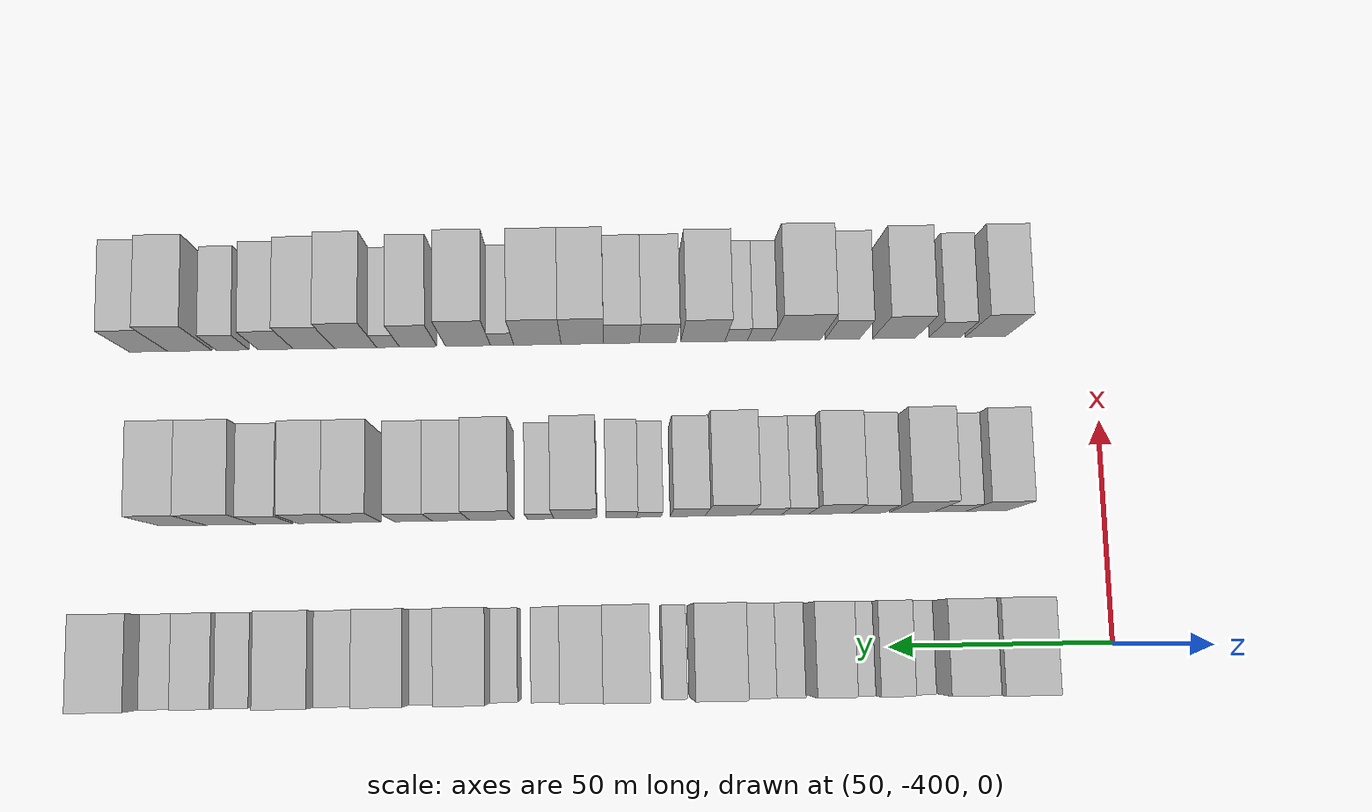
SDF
<sdf version="1.6">
 <world name="default">
  <model name="building_1">
   <static>1</static>
   <pose>50.0000 -374.2939 0 0.000000 0.000000 0.000000</pose>
   <link name="link">
    <pose>0 0 12.00 0 0 0</pose>
    <collision name="collision"><geometry><box><size>20.0000 11.4122 24.0000</size></box></geometry></collision>
    <visual name="visual">
     <cast_shadows>0</cast_shadows>
     <geometry><box><size>20.0000 11.4122 24.0000</size></box></geometry>
     <material>
      <script>
       <uri>model://HANNAS_wall/materials/scripts</uri>
       <uri>model://HANNAS_wall/materials/textures</uri>
       <name>vrc/HANNAS_wall</name>
      </script>
     </material>
    </visual>
   </link>
  </model>
  <model name="building_2">
   <static>1</static>
   <pose>50.0000 -363.4568 0 0.000000 0.000000 0.000000</pose>
   <link name="link">
    <pose>0 0 10.50 0 0 0</pose>
    <collision name="collision"><geometry><box><size>20.0000 10.2619 21.0000</size></box></geometry></collision>
    <visual name="visual">
     <cast_shadows>0</cast_shadows>
     <geometry><box><size>20.0000 10.2619 21.0000</size></box></geometry>
     <material>
      <script>
       <uri>model://HANNAS_wall/materials/scripts</uri>
       <uri>model://HANNAS_wall/materials/textures</uri>
       <name>vrc/HANNAS_wall</name>
      </script>
     </material>
    </visual>
   </link>
  </model>
  <model name="building_3">
   <static>1</static>
   <pose>50.0000 -354.5349 0 0.000000 0.000000 0.000000</pose>
   <link name="link">
    <pose>0 0 6.00 0 0 0</pose>
    <collision name="collision"><geometry><box><size>20.0000 5.5819 12.0000</size></box></geometry></collision>
    <visual name="visual">
     <cast_shadows>0</cast_shadows>
     <geometry><box><size>20.0000 5.5819 12.0000</size></box></geometry>
     <material>
      <script>
       <uri>model://HANNAS_wall/materials/scripts</uri>
       <uri>model://HANNAS_wall/materials/textures</uri>
       <name>vrc/HANNAS_wall</name>
      </script>
     </material>
    </visual>
   </link>
  </model>
  <model name="building_4">
   <static>1</static>
   <pose>50.0000 -348.0788 0 0.000000 0.000000 0.000000</pose>
   <link name="link">
    <pose>0 0 9.00 0 0 0</pose>
    <collision name="collision"><geometry><box><size>20.0000 7.3304 18.0000</size></box></geometry></collision>
    <visual name="visual">
     <cast_shadows>0</cast_shadows>
     <geometry><box><size>20.0000 7.3304 18.0000</size></box></geometry>
     <material>
      <script>
       <uri>model://HANNAS_wall/materials/scripts</uri>
       <uri>model://HANNAS_wall/materials/textures</uri>
       <name>vrc/HANNAS_wall</name>
      </script>
     </material>
    </visual>
   </link>
  </model>
  <model name="building_5">
   <static>1</static>
   <pose>50.0000 -342.0132 0 0.000000 0.000000 0.000000</pose>
   <link name="link">
    <pose>0 0 6.00 0 0 0</pose>
    <collision name="collision"><geometry><box><size>20.0000 4.8006 12.0000</size></box></geometry></collision>
    <visual name="visual">
     <cast_shadows>0</cast_shadows>
     <geometry><box><size>20.0000 4.8006 12.0000</size></box></geometry>
     <material>
      <script>
       <uri>model://HANNAS_wall/materials/scripts</uri>
       <uri>model://HANNAS_wall/materials/textures</uri>
       <name>vrc/HANNAS_wall</name>
      </script>
     </material>
    </visual>
   </link>
  </model>
  <model name="building_6">
   <static>1</static>
   <pose>50.0000 -335.3827 0 0.000000 0.000000 0.000000</pose>
   <link name="link">
    <pose>0 0 9.00 0 0 0</pose>
    <collision name="collision"><geometry><box><size>20.0000 8.4605 18.0000</size></box></geometry></collision>
    <visual name="visual">
     <cast_shadows>0</cast_shadows>
     <geometry><box><size>20.0000 8.4605 18.0000</size></box></geometry>
     <material>
      <script>
       <uri>model://HANNAS_wall/materials/scripts</uri>
       <uri>model://HANNAS_wall/materials/textures</uri>
       <name>vrc/HANNAS_wall</name>
      </script>
     </material>
    </visual>
   </link>
  </model>
  <model name="building_7">
   <static>1</static>
   <pose>50.0000 -326.1013 0 0.000000 0.000000 0.000000</pose>
   <link name="link">
    <pose>0 0 7.50 0 0 0</pose>
    <collision name="collision"><geometry><box><size>20.0000 6.1022 15.0000</size></box></geometry></collision>
    <visual name="visual">
     <cast_shadows>0</cast_shadows>
     <geometry><box><size>20.0000 6.1022 15.0000</size></box></geometry>
     <material>
      <script>
       <uri>model://HANNAS_wall/materials/scripts</uri>
       <uri>model://HANNAS_wall/materials/textures</uri>
       <name>vrc/HANNAS_wall</name>
      </script>
     </material>
    </visual>
   </link>
  </model>
  <model name="building_8">
   <static>1</static>
   <pose>50.0000 -319.6761 0 0.000000 0.000000 0.000000</pose>
   <link name="link">
    <pose>0 0 7.50 0 0 0</pose>
    <collision name="collision"><geometry><box><size>20.0000 6.7484 15.0000</size></box></geometry></collision>
    <visual name="visual">
     <cast_shadows>0</cast_shadows>
     <geometry><box><size>20.0000 6.7484 15.0000</size></box></geometry>
     <material>
      <script>
       <uri>model://HANNAS_wall/materials/scripts</uri>
       <uri>model://HANNAS_wall/materials/textures</uri>
       <name>vrc/HANNAS_wall</name>
      </script>
     </material>
    </visual>
   </link>
  </model>
  <model name="building_9">
   <static>1</static>
   <pose>50.0000 -310.8692 0 0.000000 0.000000 0.000000</pose>
   <link name="link">
    <pose>0 0 12.00 0 0 0</pose>
    <collision name="collision"><geometry><box><size>20.0000 10.8653 24.0000</size></box></geometry></collision>
    <visual name="visual">
     <cast_shadows>0</cast_shadows>
     <geometry><box><size>20.0000 10.8653 24.0000</size></box></geometry>
     <material>
      <script>
       <uri>model://HANNAS_wall/materials/scripts</uri>
       <uri>model://HANNAS_wall/materials/textures</uri>
       <name>vrc/HANNAS_wall</name>
      </script>
     </material>
    </visual>
   </link>
  </model>
  <model name="building_10">
   <static>1</static>
   <pose>50.0000 -301.8621 0 0.000000 0.000000 0.000000</pose>
   <link name="link">
    <pose>0 0 6.00 0 0 0</pose>
    <collision name="collision"><geometry><box><size>20.0000 5.1489 12.0000</size></box></geometry></collision>
    <visual name="visual">
     <cast_shadows>0</cast_shadows>
     <geometry><box><size>20.0000 5.1489 12.0000</size></box></geometry>
     <material>
      <script>
       <uri>model://HANNAS_wall/materials/scripts</uri>
       <uri>model://HANNAS_wall/materials/textures</uri>
       <name>vrc/HANNAS_wall</name>
      </script>
     </material>
    </visual>
   </link>
  </model>
  <model name="building_11">
   <static>1</static>
   <pose>50.0000 -291.4230 0 0.000000 0.000000 0.000000</pose>
   <link name="link">
    <pose>0 0 12.00 0 0 0</pose>
    <collision name="collision"><geometry><box><size>20.0000 9.7293 24.0000</size></box></geometry></collision>
    <visual name="visual">
     <cast_shadows>0</cast_shadows>
     <geometry><box><size>20.0000 9.7293 24.0000</size></box></geometry>
     <material>
      <script>
       <uri>model://HANNAS_wall/materials/scripts</uri>
       <uri>model://HANNAS_wall/materials/textures</uri>
       <name>vrc/HANNAS_wall</name>
      </script>
     </material>
    </visual>
   </link>
  </model>
  <model name="building_12">
   <static>1</static>
   <pose>50.0000 -282.0845 0 0.000000 0.000000 0.000000</pose>
   <link name="link">
    <pose>0 0 10.50 0 0 0</pose>
    <collision name="collision"><geometry><box><size>20.0000 8.9477 21.0000</size></box></geometry></collision>
    <visual name="visual">
     <cast_shadows>0</cast_shadows>
     <geometry><box><size>20.0000 8.9477 21.0000</size></box></geometry>
     <material>
      <script>
       <uri>model://HANNAS_wall/materials/scripts</uri>
       <uri>model://HANNAS_wall/materials/textures</uri>
       <name>vrc/HANNAS_wall</name>
      </script>
     </material>
    </visual>
   </link>
  </model>
  <model name="building_13">
   <static>1</static>
   <pose>50.0000 -274.4769 0 0.000000 0.000000 0.000000</pose>
   <link name="link">
    <pose>0 0 7.50 0 0 0</pose>
    <collision name="collision"><geometry><box><size>20.0000 6.2676 15.0000</size></box></geometry></collision>
    <visual name="visual">
     <cast_shadows>0</cast_shadows>
     <geometry><box><size>20.0000 6.2676 15.0000</size></box></geometry>
     <material>
      <script>
       <uri>model://HANNAS_wall/materials/scripts</uri>
       <uri>model://HANNAS_wall/materials/textures</uri>
       <name>vrc/HANNAS_wall</name>
      </script>
     </material>
    </visual>
   </link>
  </model>
  <model name="building_14">
   <static>1</static>
   <pose>50.0000 -265.4122 0 0.000000 0.000000 0.000000</pose>
   <link name="link">
    <pose>0 0 6.00 0 0 0</pose>
    <collision name="collision"><geometry><box><size>20.0000 5.8618 12.0000</size></box></geometry></collision>
    <visual name="visual">
     <cast_shadows>0</cast_shadows>
     <geometry><box><size>20.0000 5.8618 12.0000</size></box></geometry>
     <material>
      <script>
       <uri>model://HANNAS_wall/materials/scripts</uri>
       <uri>model://HANNAS_wall/materials/textures</uri>
       <name>vrc/HANNAS_wall</name>
      </script>
     </material>
    </visual>
   </link>
  </model>
  <model name="building_15">
   <static>1</static>
   <pose>50.0000 -257.1550 0 0.000000 0.000000 0.000000</pose>
   <link name="link">
    <pose>0 0 12.00 0 0 0</pose>
    <collision name="collision"><geometry><box><size>20.0000 10.6525 24.0000</size></box></geometry></collision>
    <visual name="visual">
     <cast_shadows>0</cast_shadows>
     <geometry><box><size>20.0000 10.6525 24.0000</size></box></geometry>
     <material>
      <script>
       <uri>model://HANNAS_wall/materials/scripts</uri>
       <uri>model://HANNAS_wall/materials/textures</uri>
       <name>vrc/HANNAS_wall</name>
      </script>
     </material>
    </visual>
   </link>
  </model>
  <model name="building_16">
   <static>1</static>
   <pose>50.0000 -248.7654 0 0.000000 0.000000 0.000000</pose>
   <link name="link">
    <pose>0 0 7.50 0 0 0</pose>
    <collision name="collision"><geometry><box><size>20.0000 6.1267 15.0000</size></box></geometry></collision>
    <visual name="visual">
     <cast_shadows>0</cast_shadows>
     <geometry><box><size>20.0000 6.1267 15.0000</size></box></geometry>
     <material>
      <script>
       <uri>model://HANNAS_wall/materials/scripts</uri>
       <uri>model://HANNAS_wall/materials/textures</uri>
       <name>vrc/HANNAS_wall</name>
      </script>
     </material>
    </visual>
   </link>
  </model>
  <model name="building_17">
   <static>1</static>
   <pose>50.0000 -240.4099 0 0.000000 0.000000 0.000000</pose>
   <link name="link">
    <pose>0 0 12.00 0 0 0</pose>
    <collision name="collision"><geometry><box><size>20.0000 10.5843 24.0000</size></box></geometry></collision>
    <visual name="visual">
     <cast_shadows>0</cast_shadows>
     <geometry><box><size>20.0000 10.5843 24.0000</size></box></geometry>
     <material>
      <script>
       <uri>model://HANNAS_wall/materials/scripts</uri>
       <uri>model://HANNAS_wall/materials/textures</uri>
       <name>vrc/HANNAS_wall</name>
      </script>
     </material>
    </visual>
   </link>
  </model>
  <model name="building_18">
   <static>1</static>
   <pose>50.0000 -230.1496 0 0.000000 0.000000 0.000000</pose>
   <link name="link">
    <pose>0 0 9.00 0 0 0</pose>
    <collision name="collision"><geometry><box><size>20.0000 7.9365 18.0000</size></box></geometry></collision>
    <visual name="visual">
     <cast_shadows>0</cast_shadows>
     <geometry><box><size>20.0000 7.9365 18.0000</size></box></geometry>
     <material>
      <script>
       <uri>model://HANNAS_wall/materials/scripts</uri>
       <uri>model://HANNAS_wall/materials/textures</uri>
       <name>vrc/HANNAS_wall</name>
      </script>
     </material>
    </visual>
   </link>
  </model>
  <model name="building_19">
   <static>1</static>
   <pose>50.0000 -220.5904 0 0.000000 0.000000 0.000000</pose>
   <link name="link">
    <pose>0 0 12.00 0 0 0</pose>
    <collision name="collision"><geometry><box><size>20.0000 11.1819 24.0000</size></box></geometry></collision>
    <visual name="visual">
     <cast_shadows>0</cast_shadows>
     <geometry><box><size>20.0000 11.1819 24.0000</size></box></geometry>
     <material>
      <script>
       <uri>model://HANNAS_wall/materials/scripts</uri>
       <uri>model://HANNAS_wall/materials/textures</uri>
       <name>vrc/HANNAS_wall</name>
      </script>
     </material>
    </visual>
   </link>
  </model>
  <model name="building_20">
   <static>1</static>
   <pose>50.0000 -208.3554 0 0.000000 0.000000 0.000000</pose>
   <link name="link">
    <pose>0 0 7.50 0 0 0</pose>
    <collision name="collision"><geometry><box><size>20.0000 7.2881 15.0000</size></box></geometry></collision>
    <visual name="visual">
     <cast_shadows>0</cast_shadows>
     <geometry><box><size>20.0000 7.2881 15.0000</size></box></geometry>
     <material>
      <script>
       <uri>model://HANNAS_wall/materials/scripts</uri>
       <uri>model://HANNAS_wall/materials/textures</uri>
       <name>vrc/HANNAS_wall</name>
      </script>
     </material>
    </visual>
   </link>
  </model>
  <model name="building_21">
   <static>1</static>
   <pose>50.0000 -200.5010 0 0.000000 0.000000 0.000000</pose>
   <link name="link">
    <pose>0 0 9.00 0 0 0</pose>
    <collision name="collision"><geometry><box><size>20.0000 8.4207 18.0000</size></box></geometry></collision>
    <visual name="visual">
     <cast_shadows>0</cast_shadows>
     <geometry><box><size>20.0000 8.4207 18.0000</size></box></geometry>
     <material>
      <script>
       <uri>model://HANNAS_wall/materials/scripts</uri>
       <uri>model://HANNAS_wall/materials/textures</uri>
       <name>vrc/HANNAS_wall</name>
      </script>
     </material>
    </visual>
   </link>
  </model>
  <model name="building_22">
   <static>1</static>
   <pose>50.0000 -192.5432 0 0.000000 0.000000 0.000000</pose>
   <link name="link">
    <pose>0 0 7.50 0 0 0</pose>
    <collision name="collision"><geometry><box><size>20.0000 7.4948 15.0000</size></box></geometry></collision>
    <visual name="visual">
     <cast_shadows>0</cast_shadows>
     <geometry><box><size>20.0000 7.4948 15.0000</size></box></geometry>
     <material>
      <script>
       <uri>model://HANNAS_wall/materials/scripts</uri>
       <uri>model://HANNAS_wall/materials/textures</uri>
       <name>vrc/HANNAS_wall</name>
      </script>
     </material>
    </visual>
   </link>
  </model>
  <model name="building_23">
   <static>1</static>
   <pose>50.0000 -182.8648 0 0.000000 0.000000 0.000000</pose>
   <link name="link">
    <pose>0 0 12.00 0 0 0</pose>
    <collision name="collision"><geometry><box><size>20.0000 11.8621 24.0000</size></box></geometry></collision>
    <visual name="visual">
     <cast_shadows>0</cast_shadows>
     <geometry><box><size>20.0000 11.8621 24.0000</size></box></geometry>
     <material>
      <script>
       <uri>model://HANNAS_wall/materials/scripts</uri>
       <uri>model://HANNAS_wall/materials/textures</uri>
       <name>vrc/HANNAS_wall</name>
      </script>
     </material>
    </visual>
   </link>
  </model>
  <model name="building_87">
   <static>1</static>
   <pose>90.0000 -373.3936 0 0.000000 0.000000 0.000000</pose>
   <link name="link">
    <pose>0 0 10.50 0 0 0</pose>
    <collision name="collision"><geometry><box><size>20.0000 9.2129 21.0000</size></box></geometry></collision>
    <visual name="visual">
     <cast_shadows>0</cast_shadows>
     <geometry><box><size>20.0000 9.2129 21.0000</size></box></geometry>
     <material>
      <script>
       <uri>model://HANNAS_wall/materials/scripts</uri>
       <uri>model://HANNAS_wall/materials/textures</uri>
       <name>vrc/HANNAS_wall</name>
      </script>
     </material>
    </visual>
   </link>
  </model>
  <model name="building_88">
   <static>1</static>
   <pose>90.0000 -365.1142 0 0.000000 0.000000 0.000000</pose>
   <link name="link">
    <pose>0 0 7.50 0 0 0</pose>
    <collision name="collision"><geometry><box><size>20.0000 7.3459 15.0000</size></box></geometry></collision>
    <visual name="visual">
     <cast_shadows>0</cast_shadows>
     <geometry><box><size>20.0000 7.3459 15.0000</size></box></geometry>
     <material>
      <script>
       <uri>model://HANNAS_wall/materials/scripts</uri>
       <uri>model://HANNAS_wall/materials/textures</uri>
       <name>vrc/HANNAS_wall</name>
      </script>
     </material>
    </visual>
   </link>
  </model>
  <model name="building_89">
   <static>1</static>
   <pose>90.0000 -356.4322 0 0.000000 0.000000 0.000000</pose>
   <link name="link">
    <pose>0 0 12.00 0 0 0</pose>
    <collision name="collision"><geometry><box><size>20.0000 10.0182 24.0000</size></box></geometry></collision>
    <visual name="visual">
     <cast_shadows>0</cast_shadows>
     <geometry><box><size>20.0000 10.0182 24.0000</size></box></geometry>
     <material>
      <script>
       <uri>model://HANNAS_wall/materials/scripts</uri>
       <uri>model://HANNAS_wall/materials/textures</uri>
       <name>vrc/HANNAS_wall</name>
      </script>
     </material>
    </visual>
   </link>
  </model>
  <model name="building_90">
   <static>1</static>
   <pose>90.0000 -346.5518 0 0.000000 0.000000 0.000000</pose>
   <link name="link">
    <pose>0 0 9.00 0 0 0</pose>
    <collision name="collision"><geometry><box><size>20.0000 7.7427 18.0000</size></box></geometry></collision>
    <visual name="visual">
     <cast_shadows>0</cast_shadows>
     <geometry><box><size>20.0000 7.7427 18.0000</size></box></geometry>
     <material>
      <script>
       <uri>model://HANNAS_wall/materials/scripts</uri>
       <uri>model://HANNAS_wall/materials/textures</uri>
       <name>vrc/HANNAS_wall</name>
      </script>
     </material>
    </visual>
   </link>
  </model>
  <model name="building_91">
   <static>1</static>
   <pose>90.0000 -338.0064 0 0.000000 0.000000 0.000000</pose>
   <link name="link">
    <pose>0 0 10.50 0 0 0</pose>
    <collision name="collision"><geometry><box><size>20.0000 9.3481 21.0000</size></box></geometry></collision>
    <visual name="visual">
     <cast_shadows>0</cast_shadows>
     <geometry><box><size>20.0000 9.3481 21.0000</size></box></geometry>
     <material>
      <script>
       <uri>model://HANNAS_wall/materials/scripts</uri>
       <uri>model://HANNAS_wall/materials/textures</uri>
       <name>vrc/HANNAS_wall</name>
      </script>
     </material>
    </visual>
   </link>
  </model>
  <model name="building_92">
   <static>1</static>
   <pose>90.0000 -330.3028 0 0.000000 0.000000 0.000000</pose>
   <link name="link">
    <pose>0 0 7.50 0 0 0</pose>
    <collision name="collision"><geometry><box><size>20.0000 6.0591 15.0000</size></box></geometry></collision>
    <visual name="visual">
     <cast_shadows>0</cast_shadows>
     <geometry><box><size>20.0000 6.0591 15.0000</size></box></geometry>
     <material>
      <script>
       <uri>model://HANNAS_wall/materials/scripts</uri>
       <uri>model://HANNAS_wall/materials/textures</uri>
       <name>vrc/HANNAS_wall</name>
      </script>
     </material>
    </visual>
   </link>
  </model>
  <model name="building_93">
   <static>1</static>
   <pose>90.0000 -323.6215 0 0.000000 0.000000 0.000000</pose>
   <link name="link">
    <pose>0 0 7.50 0 0 0</pose>
    <collision name="collision"><geometry><box><size>20.0000 7.3035 15.0000</size></box></geometry></collision>
    <visual name="visual">
     <cast_shadows>0</cast_shadows>
     <geometry><box><size>20.0000 7.3035 15.0000</size></box></geometry>
     <material>
      <script>
       <uri>model://HANNAS_wall/materials/scripts</uri>
       <uri>model://HANNAS_wall/materials/textures</uri>
       <name>vrc/HANNAS_wall</name>
      </script>
     </material>
    </visual>
   </link>
  </model>
  <model name="building_94">
   <static>1</static>
   <pose>90.0000 -314.9999 0 0.000000 0.000000 0.000000</pose>
   <link name="link">
    <pose>0 0 12.00 0 0 0</pose>
    <collision name="collision"><geometry><box><size>20.0000 9.9396 24.0000</size></box></geometry></collision>
    <visual name="visual">
     <cast_shadows>0</cast_shadows>
     <geometry><box><size>20.0000 9.9396 24.0000</size></box></geometry>
     <material>
      <script>
       <uri>model://HANNAS_wall/materials/scripts</uri>
       <uri>model://HANNAS_wall/materials/textures</uri>
       <name>vrc/HANNAS_wall</name>
      </script>
     </material>
    </visual>
   </link>
  </model>
  <model name="building_95">
   <static>1</static>
   <pose>90.0000 -306.1053 0 0.000000 0.000000 0.000000</pose>
   <link name="link">
    <pose>0 0 9.00 0 0 0</pose>
    <collision name="collision"><geometry><box><size>20.0000 7.8495 18.0000</size></box></geometry></collision>
    <visual name="visual">
     <cast_shadows>0</cast_shadows>
     <geometry><box><size>20.0000 7.8495 18.0000</size></box></geometry>
     <material>
      <script>
       <uri>model://HANNAS_wall/materials/scripts</uri>
       <uri>model://HANNAS_wall/materials/textures</uri>
       <name>vrc/HANNAS_wall</name>
      </script>
     </material>
    </visual>
   </link>
  </model>
  <model name="building_96">
   <static>1</static>
   <pose>90.0000 -297.4326 0 0.000000 0.000000 0.000000</pose>
   <link name="link">
    <pose>0 0 6.00 0 0 0</pose>
    <collision name="collision"><geometry><box><size>20.0000 5.4960 12.0000</size></box></geometry></collision>
    <visual name="visual">
     <cast_shadows>0</cast_shadows>
     <geometry><box><size>20.0000 5.4960 12.0000</size></box></geometry>
     <material>
      <script>
       <uri>model://HANNAS_wall/materials/scripts</uri>
       <uri>model://HANNAS_wall/materials/textures</uri>
       <name>vrc/HANNAS_wall</name>
      </script>
     </material>
    </visual>
   </link>
  </model>
  <model name="building_97">
   <static>1</static>
   <pose>90.0000 -291.2237 0 0.000000 0.000000 0.000000</pose>
   <link name="link">
    <pose>0 0 7.50 0 0 0</pose>
    <collision name="collision"><geometry><box><size>20.0000 6.9217 15.0000</size></box></geometry></collision>
    <visual name="visual">
     <cast_shadows>0</cast_shadows>
     <geometry><box><size>20.0000 6.9217 15.0000</size></box></geometry>
     <material>
      <script>
       <uri>model://HANNAS_wall/materials/scripts</uri>
       <uri>model://HANNAS_wall/materials/textures</uri>
       <name>vrc/HANNAS_wall</name>
      </script>
     </material>
    </visual>
   </link>
  </model>
  <model name="building_98">
   <static>1</static>
   <pose>90.0000 -280.9356 0 0.000000 0.000000 0.000000</pose>
   <link name="link">
    <pose>0 0 10.50 0 0 0</pose>
    <collision name="collision"><geometry><box><size>20.0000 9.6546 21.0000</size></box></geometry></collision>
    <visual name="visual">
     <cast_shadows>0</cast_shadows>
     <geometry><box><size>20.0000 9.6546 21.0000</size></box></geometry>
     <material>
      <script>
       <uri>model://HANNAS_wall/materials/scripts</uri>
       <uri>model://HANNAS_wall/materials/textures</uri>
       <name>vrc/HANNAS_wall</name>
      </script>
     </material>
    </visual>
   </link>
  </model>
  <model name="building_99">
   <static>1</static>
   <pose>90.0000 -273.1486 0 0.000000 0.000000 0.000000</pose>
   <link name="link">
    <pose>0 0 6.00 0 0 0</pose>
    <collision name="collision"><geometry><box><size>20.0000 5.9195 12.0000</size></box></geometry></collision>
    <visual name="visual">
     <cast_shadows>0</cast_shadows>
     <geometry><box><size>20.0000 5.9195 12.0000</size></box></geometry>
     <material>
      <script>
       <uri>model://HANNAS_wall/materials/scripts</uri>
       <uri>model://HANNAS_wall/materials/textures</uri>
       <name>vrc/HANNAS_wall</name>
      </script>
     </material>
    </visual>
   </link>
  </model>
  <model name="building_100">
   <static>1</static>
   <pose>90.0000 -262.1846 0 0.000000 0.000000 0.000000</pose>
   <link name="link">
    <pose>0 0 10.50 0 0 0</pose>
    <collision name="collision"><geometry><box><size>20.0000 10.0084 21.0000</size></box></geometry></collision>
    <visual name="visual">
     <cast_shadows>0</cast_shadows>
     <geometry><box><size>20.0000 10.0084 21.0000</size></box></geometry>
     <material>
      <script>
       <uri>model://HANNAS_wall/materials/scripts</uri>
       <uri>model://HANNAS_wall/materials/textures</uri>
       <name>vrc/HANNAS_wall</name>
      </script>
     </material>
    </visual>
   </link>
  </model>
  <model name="building_101">
   <static>1</static>
   <pose>90.0000 -252.9773 0 0.000000 0.000000 0.000000</pose>
   <link name="link">
    <pose>0 0 9.00 0 0 0</pose>
    <collision name="collision"><geometry><box><size>20.0000 8.4063 18.0000</size></box></geometry></collision>
    <visual name="visual">
     <cast_shadows>0</cast_shadows>
     <geometry><box><size>20.0000 8.4063 18.0000</size></box></geometry>
     <material>
      <script>
       <uri>model://HANNAS_wall/materials/scripts</uri>
       <uri>model://HANNAS_wall/materials/textures</uri>
       <name>vrc/HANNAS_wall</name>
      </script>
     </material>
    </visual>
   </link>
  </model>
  <model name="building_102">
   <static>1</static>
   <pose>90.0000 -244.5328 0 0.000000 0.000000 0.000000</pose>
   <link name="link">
    <pose>0 0 9.00 0 0 0</pose>
    <collision name="collision"><geometry><box><size>20.0000 8.4827 18.0000</size></box></geometry></collision>
    <visual name="visual">
     <cast_shadows>0</cast_shadows>
     <geometry><box><size>20.0000 8.4827 18.0000</size></box></geometry>
     <material>
      <script>
       <uri>model://HANNAS_wall/materials/scripts</uri>
       <uri>model://HANNAS_wall/materials/textures</uri>
       <name>vrc/HANNAS_wall</name>
      </script>
     </material>
    </visual>
   </link>
  </model>
  <model name="building_103">
   <static>1</static>
   <pose>90.0000 -232.6624 0 0.000000 0.000000 0.000000</pose>
   <link name="link">
    <pose>0 0 10.50 0 0 0</pose>
    <collision name="collision"><geometry><box><size>20.0000 9.2582 21.0000</size></box></geometry></collision>
    <visual name="visual">
     <cast_shadows>0</cast_shadows>
     <geometry><box><size>20.0000 9.2582 21.0000</size></box></geometry>
     <material>
      <script>
       <uri>model://HANNAS_wall/materials/scripts</uri>
       <uri>model://HANNAS_wall/materials/textures</uri>
       <name>vrc/HANNAS_wall</name>
      </script>
     </material>
    </visual>
   </link>
  </model>
  <model name="building_104">
   <static>1</static>
   <pose>90.0000 -223.3094 0 0.000000 0.000000 0.000000</pose>
   <link name="link">
    <pose>0 0 10.50 0 0 0</pose>
    <collision name="collision"><geometry><box><size>20.0000 9.4477 21.0000</size></box></geometry></collision>
    <visual name="visual">
     <cast_shadows>0</cast_shadows>
     <geometry><box><size>20.0000 9.4477 21.0000</size></box></geometry>
     <material>
      <script>
       <uri>model://HANNAS_wall/materials/scripts</uri>
       <uri>model://HANNAS_wall/materials/textures</uri>
       <name>vrc/HANNAS_wall</name>
      </script>
     </material>
    </visual>
   </link>
  </model>
  <model name="building_105">
   <static>1</static>
   <pose>90.0000 -213.3580 0 0.000000 0.000000 0.000000</pose>
   <link name="link">
    <pose>0 0 9.00 0 0 0</pose>
    <collision name="collision"><geometry><box><size>20.0000 8.4550 18.0000</size></box></geometry></collision>
    <visual name="visual">
     <cast_shadows>0</cast_shadows>
     <geometry><box><size>20.0000 8.4550 18.0000</size></box></geometry>
     <material>
      <script>
       <uri>model://HANNAS_wall/materials/scripts</uri>
       <uri>model://HANNAS_wall/materials/textures</uri>
       <name>vrc/HANNAS_wall</name>
      </script>
     </material>
    </visual>
   </link>
  </model>
  <model name="building_106">
   <static>1</static>
   <pose>90.0000 -203.4848 0 0.000000 0.000000 0.000000</pose>
   <link name="link">
    <pose>0 0 12.00 0 0 0</pose>
    <collision name="collision"><geometry><box><size>20.0000 11.2914 24.0000</size></box></geometry></collision>
    <visual name="visual">
     <cast_shadows>0</cast_shadows>
     <geometry><box><size>20.0000 11.2914 24.0000</size></box></geometry>
     <material>
      <script>
       <uri>model://HANNAS_wall/materials/scripts</uri>
       <uri>model://HANNAS_wall/materials/textures</uri>
       <name>vrc/HANNAS_wall</name>
      </script>
     </material>
    </visual>
   </link>
  </model>
  <model name="building_107">
   <static>1</static>
   <pose>90.0000 -192.7668 0 0.000000 0.000000 0.000000</pose>
   <link name="link">
    <pose>0 0 12.00 0 0 0</pose>
    <collision name="collision"><geometry><box><size>20.0000 10.1446 24.0000</size></box></geometry></collision>
    <visual name="visual">
     <cast_shadows>0</cast_shadows>
     <geometry><box><size>20.0000 10.1446 24.0000</size></box></geometry>
     <material>
      <script>
       <uri>model://HANNAS_wall/materials/scripts</uri>
       <uri>model://HANNAS_wall/materials/textures</uri>
       <name>vrc/HANNAS_wall</name>
      </script>
     </material>
    </visual>
   </link>
  </model>
  <model name="building_175">
   <static>1</static>
   <pose>130.0000 -375.3500 0 0.000000 0.000000 0.000000</pose>
   <link name="link">
    <pose>0 0 10.50 0 0 0</pose>
    <collision name="collision"><geometry><box><size>20.0000 9.3001 21.0000</size></box></geometry></collision>
    <visual name="visual">
     <cast_shadows>0</cast_shadows>
     <geometry><box><size>20.0000 9.3001 21.0000</size></box></geometry>
     <material>
      <script>
       <uri>model://HANNAS_wall/materials/scripts</uri>
       <uri>model://HANNAS_wall/materials/textures</uri>
       <name>vrc/HANNAS_wall</name>
      </script>
     </material>
    </visual>
   </link>
  </model>
  <model name="building_176">
   <static>1</static>
   <pose>130.0000 -366.0331 0 0.000000 0.000000 0.000000</pose>
   <link name="link">
    <pose>0 0 7.50 0 0 0</pose>
    <collision name="collision"><geometry><box><size>20.0000 7.3336 15.0000</size></box></geometry></collision>
    <visual name="visual">
     <cast_shadows>0</cast_shadows>
     <geometry><box><size>20.0000 7.3336 15.0000</size></box></geometry>
     <material>
      <script>
       <uri>model://HANNAS_wall/materials/scripts</uri>
       <uri>model://HANNAS_wall/materials/textures</uri>
       <name>vrc/HANNAS_wall</name>
      </script>
     </material>
    </visual>
   </link>
  </model>
  <model name="building_177">
   <static>1</static>
   <pose>130.0000 -354.4365 0 0.000000 0.000000 0.000000</pose>
   <link name="link">
    <pose>0 0 10.50 0 0 0</pose>
    <collision name="collision"><geometry><box><size>20.0000 9.8598 21.0000</size></box></geometry></collision>
    <visual name="visual">
     <cast_shadows>0</cast_shadows>
     <geometry><box><size>20.0000 9.8598 21.0000</size></box></geometry>
     <material>
      <script>
       <uri>model://HANNAS_wall/materials/scripts</uri>
       <uri>model://HANNAS_wall/materials/textures</uri>
       <name>vrc/HANNAS_wall</name>
      </script>
     </material>
    </visual>
   </link>
  </model>
  <model name="building_178">
   <static>1</static>
   <pose>130.0000 -342.5646 0 0.000000 0.000000 0.000000</pose>
   <link name="link">
    <pose>0 0 9.00 0 0 0</pose>
    <collision name="collision"><geometry><box><size>20.0000 7.8840 18.0000</size></box></geometry></collision>
    <visual name="visual">
     <cast_shadows>0</cast_shadows>
     <geometry><box><size>20.0000 7.8840 18.0000</size></box></geometry>
     <material>
      <script>
       <uri>model://HANNAS_wall/materials/scripts</uri>
       <uri>model://HANNAS_wall/materials/textures</uri>
       <name>vrc/HANNAS_wall</name>
      </script>
     </material>
    </visual>
   </link>
  </model>
  <model name="building_179">
   <static>1</static>
   <pose>130.0000 -331.9366 0 0.000000 0.000000 0.000000</pose>
   <link name="link">
    <pose>0 0 12.00 0 0 0</pose>
    <collision name="collision"><geometry><box><size>20.0000 11.3719 24.0000</size></box></geometry></collision>
    <visual name="visual">
     <cast_shadows>0</cast_shadows>
     <geometry><box><size>20.0000 11.3719 24.0000</size></box></geometry>
     <material>
      <script>
       <uri>model://HANNAS_wall/materials/scripts</uri>
       <uri>model://HANNAS_wall/materials/textures</uri>
       <name>vrc/HANNAS_wall</name>
      </script>
     </material>
    </visual>
   </link>
  </model>
  <model name="building_180">
   <static>1</static>
   <pose>130.0000 -323.5129 0 0.000000 0.000000 0.000000</pose>
   <link name="link">
    <pose>0 0 6.00 0 0 0</pose>
    <collision name="collision"><geometry><box><size>20.0000 5.4754 12.0000</size></box></geometry></collision>
    <visual name="visual">
     <cast_shadows>0</cast_shadows>
     <geometry><box><size>20.0000 5.4754 12.0000</size></box></geometry>
     <material>
      <script>
       <uri>model://HANNAS_wall/materials/scripts</uri>
       <uri>model://HANNAS_wall/materials/textures</uri>
       <name>vrc/HANNAS_wall</name>
      </script>
     </material>
    </visual>
   </link>
  </model>
  <model name="building_181">
   <static>1</static>
   <pose>130.0000 -318.2276 0 0.000000 0.000000 0.000000</pose>
   <link name="link">
    <pose>0 0 6.00 0 0 0</pose>
    <collision name="collision"><geometry><box><size>20.0000 5.0951 12.0000</size></box></geometry></collision>
    <visual name="visual">
     <cast_shadows>0</cast_shadows>
     <geometry><box><size>20.0000 5.0951 12.0000</size></box></geometry>
     <material>
      <script>
       <uri>model://HANNAS_wall/materials/scripts</uri>
       <uri>model://HANNAS_wall/materials/textures</uri>
       <name>vrc/HANNAS_wall</name>
      </script>
     </material>
    </visual>
   </link>
  </model>
  <model name="building_182">
   <static>1</static>
   <pose>130.0000 -310.6233 0 0.000000 0.000000 0.000000</pose>
   <link name="link">
    <pose>0 0 10.50 0 0 0</pose>
    <collision name="collision"><geometry><box><size>20.0000 10.1136 21.0000</size></box></geometry></collision>
    <visual name="visual">
     <cast_shadows>0</cast_shadows>
     <geometry><box><size>20.0000 10.1136 21.0000</size></box></geometry>
     <material>
      <script>
       <uri>model://HANNAS_wall/materials/scripts</uri>
       <uri>model://HANNAS_wall/materials/textures</uri>
       <name>vrc/HANNAS_wall</name>
      </script>
     </material>
    </visual>
   </link>
  </model>
  <model name="building_183">
   <static>1</static>
   <pose>130.0000 -300.3065 0 0.000000 0.000000 0.000000</pose>
   <link name="link">
    <pose>0 0 9.00 0 0 0</pose>
    <collision name="collision"><geometry><box><size>20.0000 8.5201 18.0000</size></box></geometry></collision>
    <visual name="visual">
     <cast_shadows>0</cast_shadows>
     <geometry><box><size>20.0000 8.5201 18.0000</size></box></geometry>
     <material>
      <script>
       <uri>model://HANNAS_wall/materials/scripts</uri>
       <uri>model://HANNAS_wall/materials/textures</uri>
       <name>vrc/HANNAS_wall</name>
      </script>
     </material>
    </visual>
   </link>
  </model>
  <model name="building_184">
   <static>1</static>
   <pose>130.0000 -292.0009 0 0.000000 0.000000 0.000000</pose>
   <link name="link">
    <pose>0 0 9.00 0 0 0</pose>
    <collision name="collision"><geometry><box><size>20.0000 8.0911 18.0000</size></box></geometry></collision>
    <visual name="visual">
     <cast_shadows>0</cast_shadows>
     <geometry><box><size>20.0000 8.0911 18.0000</size></box></geometry>
     <material>
      <script>
       <uri>model://HANNAS_wall/materials/scripts</uri>
       <uri>model://HANNAS_wall/materials/textures</uri>
       <name>vrc/HANNAS_wall</name>
      </script>
     </material>
    </visual>
   </link>
  </model>
  <model name="building_185">
   <static>1</static>
   <pose>130.0000 -283.0986 0 0.000000 0.000000 0.000000</pose>
   <link name="link">
    <pose>0 0 12.00 0 0 0</pose>
    <collision name="collision"><geometry><box><size>20.0000 9.7133 24.0000</size></box></geometry></collision>
    <visual name="visual">
     <cast_shadows>0</cast_shadows>
     <geometry><box><size>20.0000 9.7133 24.0000</size></box></geometry>
     <material>
      <script>
       <uri>model://HANNAS_wall/materials/scripts</uri>
       <uri>model://HANNAS_wall/materials/textures</uri>
       <name>vrc/HANNAS_wall</name>
      </script>
     </material>
    </visual>
   </link>
  </model>
  <model name="building_186">
   <static>1</static>
   <pose>130.0000 -272.8232 0 0.000000 0.000000 0.000000</pose>
   <link name="link">
    <pose>0 0 12.00 0 0 0</pose>
    <collision name="collision"><geometry><box><size>20.0000 10.8375 24.0000</size></box></geometry></collision>
    <visual name="visual">
     <cast_shadows>0</cast_shadows>
     <geometry><box><size>20.0000 10.8375 24.0000</size></box></geometry>
     <material>
      <script>
       <uri>model://HANNAS_wall/materials/scripts</uri>
       <uri>model://HANNAS_wall/materials/textures</uri>
       <name>vrc/HANNAS_wall</name>
      </script>
     </material>
    </visual>
   </link>
  </model>
  <model name="building_187">
   <static>1</static>
   <pose>130.0000 -264.7514 0 0.000000 0.000000 0.000000</pose>
   <link name="link">
    <pose>0 0 6.00 0 0 0</pose>
    <collision name="collision"><geometry><box><size>20.0000 5.3061 12.0000</size></box></geometry></collision>
    <visual name="visual">
     <cast_shadows>0</cast_shadows>
     <geometry><box><size>20.0000 5.3061 12.0000</size></box></geometry>
     <material>
      <script>
       <uri>model://HANNAS_wall/materials/scripts</uri>
       <uri>model://HANNAS_wall/materials/textures</uri>
       <name>vrc/HANNAS_wall</name>
      </script>
     </material>
    </visual>
   </link>
  </model>
  <model name="building_188">
   <static>1</static>
   <pose>130.0000 -256.9804 0 0.000000 0.000000 0.000000</pose>
   <link name="link">
    <pose>0 0 12.00 0 0 0</pose>
    <collision name="collision"><geometry><box><size>20.0000 10.2359 24.0000</size></box></geometry></collision>
    <visual name="visual">
     <cast_shadows>0</cast_shadows>
     <geometry><box><size>20.0000 10.2359 24.0000</size></box></geometry>
     <material>
      <script>
       <uri>model://HANNAS_wall/materials/scripts</uri>
       <uri>model://HANNAS_wall/materials/textures</uri>
       <name>vrc/HANNAS_wall</name>
      </script>
     </material>
    </visual>
   </link>
  </model>
  <model name="building_189">
   <static>1</static>
   <pose>130.0000 -245.6122 0 0.000000 0.000000 0.000000</pose>
   <link name="link">
    <pose>0 0 10.50 0 0 0</pose>
    <collision name="collision"><geometry><box><size>20.0000 8.5004 21.0000</size></box></geometry></collision>
    <visual name="visual">
     <cast_shadows>0</cast_shadows>
     <geometry><box><size>20.0000 8.5004 21.0000</size></box></geometry>
     <material>
      <script>
       <uri>model://HANNAS_wall/materials/scripts</uri>
       <uri>model://HANNAS_wall/materials/textures</uri>
       <name>vrc/HANNAS_wall</name>
      </script>
     </material>
    </visual>
   </link>
  </model>
  <model name="building_190">
   <static>1</static>
   <pose>130.0000 -238.7506 0 0.000000 0.000000 0.000000</pose>
   <link name="link">
    <pose>0 0 6.00 0 0 0</pose>
    <collision name="collision"><geometry><box><size>20.0000 5.2229 12.0000</size></box></geometry></collision>
    <visual name="visual">
     <cast_shadows>0</cast_shadows>
     <geometry><box><size>20.0000 5.2229 12.0000</size></box></geometry>
     <material>
      <script>
       <uri>model://HANNAS_wall/materials/scripts</uri>
       <uri>model://HANNAS_wall/materials/textures</uri>
       <name>vrc/HANNAS_wall</name>
      </script>
     </material>
    </visual>
   </link>
  </model>
  <model name="building_191">
   <static>1</static>
   <pose>130.0000 -231.3023 0 0.000000 0.000000 0.000000</pose>
   <link name="link">
    <pose>0 0 12.00 0 0 0</pose>
    <collision name="collision"><geometry><box><size>20.0000 9.6737 24.0000</size></box></geometry></collision>
    <visual name="visual">
     <cast_shadows>0</cast_shadows>
     <geometry><box><size>20.0000 9.6737 24.0000</size></box></geometry>
     <material>
      <script>
       <uri>model://HANNAS_wall/materials/scripts</uri>
       <uri>model://HANNAS_wall/materials/textures</uri>
       <name>vrc/HANNAS_wall</name>
      </script>
     </material>
    </visual>
   </link>
  </model>
  <model name="building_192">
   <static>1</static>
   <pose>130.0000 -221.7677 0 0.000000 0.000000 0.000000</pose>
   <link name="link">
    <pose>0 0 10.50 0 0 0</pose>
    <collision name="collision"><geometry><box><size>20.0000 9.3954 21.0000</size></box></geometry></collision>
    <visual name="visual">
     <cast_shadows>0</cast_shadows>
     <geometry><box><size>20.0000 9.3954 21.0000</size></box></geometry>
     <material>
      <script>
       <uri>model://HANNAS_wall/materials/scripts</uri>
       <uri>model://HANNAS_wall/materials/textures</uri>
       <name>vrc/HANNAS_wall</name>
      </script>
     </material>
    </visual>
   </link>
  </model>
  <model name="building_193">
   <static>1</static>
   <pose>130.0000 -213.0235 0 0.000000 0.000000 0.000000</pose>
   <link name="link">
    <pose>0 0 9.00 0 0 0</pose>
    <collision name="collision"><geometry><box><size>20.0000 8.0931 18.0000</size></box></geometry></collision>
    <visual name="visual">
     <cast_shadows>0</cast_shadows>
     <geometry><box><size>20.0000 8.0931 18.0000</size></box></geometry>
     <material>
      <script>
       <uri>model://HANNAS_wall/materials/scripts</uri>
       <uri>model://HANNAS_wall/materials/textures</uri>
       <name>vrc/HANNAS_wall</name>
      </script>
     </material>
    </visual>
   </link>
  </model>
  <model name="building_194">
   <static>1</static>
   <pose>130.0000 -203.2405 0 0.000000 0.000000 0.000000</pose>
   <link name="link">
    <pose>0 0 7.50 0 0 0</pose>
    <collision name="collision"><geometry><box><size>20.0000 7.4729 15.0000</size></box></geometry></collision>
    <visual name="visual">
     <cast_shadows>0</cast_shadows>
     <geometry><box><size>20.0000 7.4729 15.0000</size></box></geometry>
     <material>
      <script>
       <uri>model://HANNAS_wall/materials/scripts</uri>
       <uri>model://HANNAS_wall/materials/textures</uri>
       <name>vrc/HANNAS_wall</name>
      </script>
     </material>
    </visual>
   </link>
  </model>
  <model name="building_195">
   <static>1</static>
   <pose>130.0000 -193.4497 0 0.000000 0.000000 0.000000</pose>
   <link name="link">
    <pose>0 0 12.00 0 0 0</pose>
    <collision name="collision"><geometry><box><size>20.0000 10.1087 24.0000</size></box></geometry></collision>
    <visual name="visual">
     <cast_shadows>0</cast_shadows>
     <geometry><box><size>20.0000 10.1087 24.0000</size></box></geometry>
     <material>
      <script>
       <uri>model://HANNAS_wall/materials/scripts</uri>
       <uri>model://HANNAS_wall/materials/textures</uri>
       <name>vrc/HANNAS_wall</name>
      </script>
     </material>
    </visual>
   </link>
  </model>
  <model name="building_196">
   <static>1</static>
   <pose>130.0000 -184.0329 0 0.000000 0.000000 0.000000</pose>
   <link name="link">
    <pose>0 0 10.50 0 0 0</pose>
    <collision name="collision"><geometry><box><size>20.0000 8.7249 21.0000</size></box></geometry></collision>
    <visual name="visual">
     <cast_shadows>0</cast_shadows>
     <geometry><box><size>20.0000 8.7249 21.0000</size></box></geometry>
     <material>
      <script>
       <uri>model://HANNAS_wall/materials/scripts</uri>
       <uri>model://HANNAS_wall/materials/textures</uri>
       <name>vrc/HANNAS_wall</name>
      </script>
     </material>
    </visual>
   </link>
  </model>
 </world>
</sdf>
